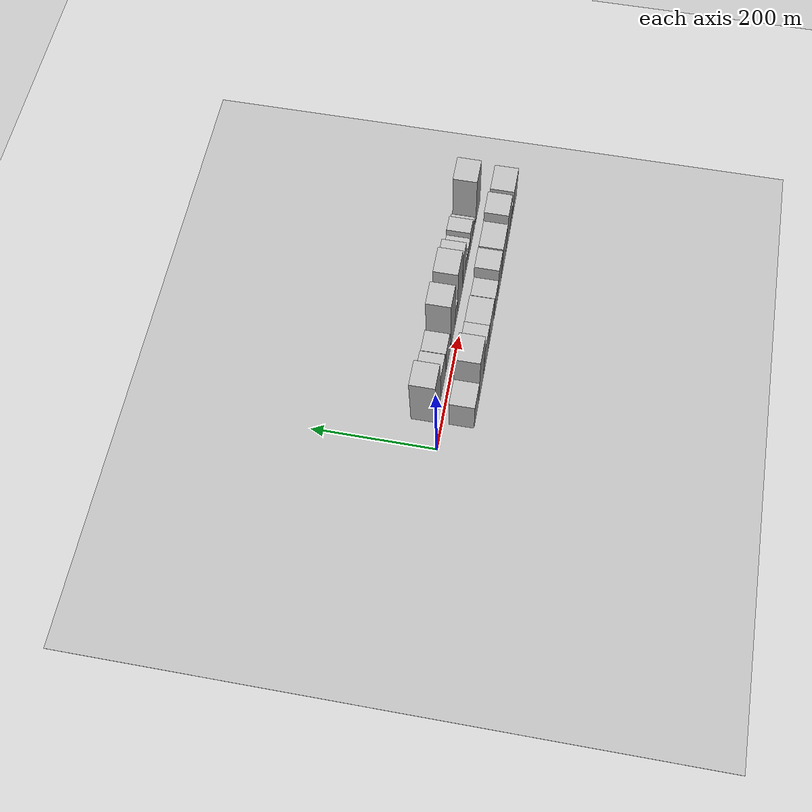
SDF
<?xml version="1.0" encoding="utf-8"?>

<sdf version="1.6">

   <world name="default">

      <gui fullscreen="0">

         <camera name="user_camera">

            <pose>-15 0 4.57585 0 0 0</pose>

            <view_controller>orbit</view_controller>

         </camera>

      </gui>

      <scene>

         <sky>

           <clouds>

             <speed>12</speed>

           </clouds>

         </sky>

         <ambient>0.4 0.4 0.4 1</ambient>

         <background>0.7 0.7 0.7 1</background>

         <shadows>1</shadows>

      </scene>

      <gravity>0 0 -9.8066</gravity>

      <magnetic_field>6e-06 2.3e-05 -4.2e-05</magnetic_field>

      <physics default="0" name="default_physics" type="ode">

         <ode>

            <solver>

               <type>quick</type>

               <iters>10</iters>

               <sor>1.0</sor>

               <use_dynamic_moi_rescaling>0</use_dynamic_moi_rescaling>

            </solver>

            <constraints>

               <cfm>0</cfm>

               <erp>0.2</erp>

               <contact_max_correcting_vel>100</contact_max_correcting_vel>

               <contact_surface_layer>0.001</contact_surface_layer>

            </constraints>

         </ode>

         <max_step_size>0.004</max_step_size>

         <real_time_factor>1</real_time_factor>

         <real_time_update_rate>250</real_time_update_rate>

      </physics>

      <light name="sun" type="directional">

         <cast_shadows>1</cast_shadows>

         <pose>0 0 10 0 0 0</pose>

         <diffuse>0.8 0.8 0.8 1</diffuse>

         <specular>0.2 0.2 0.2 1</specular>

         <attenuation>

            <range>1000</range>

            <constant>0.9</constant>

            <linear>0.01</linear>

            <quadratic>0.001</quadratic>

         </attenuation>

         <direction>-0.5 0.1 -0.9</direction>

      </light>

      <include>

         <name>ground_plane_1</name>

         <uri>model://HANNAS_ground_plane</uri>

         <pose>0 0 0  0 0 0</pose>

      </include>

      <include>

         <name>ground_plane_2</name>

         <uri>model://HANNAS_ground_plane</uri>

         <pose>100 0 0  0 0 0</pose>

      </include>

      <model name="building_1">

         <static>1</static>

         <pose frame="">64.8131 30.0000 0 0.000000 0.000000 1.570796</pose>

         <link name="link">

            <pose frame="">0 0 61.50 0 0 0</pose>

            <collision name="collision">

               <geometry>

                  <box>

                     <size>40.0000 41.6261 123.0000</size>

                  </box>

               </geometry>

               <max_contacts>10</max_contacts>

               <surface>

                  <contact>

                     <ode/>

                  </contact>

                  <bounce/>

                  <friction>

                     <torsional>

                        <ode/>

                     </torsional>

                     <ode/>

                  </friction>

               </surface>

            </collision>

            <visual name="visual">

               <cast_shadows>0</cast_shadows>

               <geometry>

                  <box>

                     <size>40.0000 41.6261 123.0000</size>

                  </box>

               </geometry>

               <material>

                  <script>

                     <uri>model://HANNAS_wall/materials/scripts</uri>

                     <uri>model://HANNAS_wall/materials/textures</uri>

                     <name>vrc/HANNAS_wall</name>

                  </script>

               </material>

            </visual>

            <self_collide>0</self_collide>

            <enable_wind>0</enable_wind>

            <kinematic>0</kinematic>

         </link>

      </model>

      <model name="building_2">

         <static>1</static>

         <pose frame="">106.8738 30.0000 0 0.000000 0.000000 1.570796</pose>

         <link name="link">

            <pose frame="">0 0 36.00 0 0 0</pose>

            <collision name="collision">

               <geometry>

                  <box>

                     <size>40.0000 42.4953 72.0000</size>

                  </box>

               </geometry>

               <max_contacts>10</max_contacts>

               <surface>

                  <contact>

                     <ode/>

                  </contact>

                  <bounce/>

                  <friction>

                     <torsional>

                        <ode/>

                     </torsional>

                     <ode/>

                  </friction>

               </surface>

            </collision>

            <visual name="visual">

               <cast_shadows>0</cast_shadows>

               <geometry>

                  <box>

                     <size>40.0000 42.4953 72.0000</size>

                  </box>

               </geometry>

               <material>

                  <script>

                     <uri>model://HANNAS_wall/materials/scripts</uri>

                     <uri>model://HANNAS_wall/materials/textures</uri>

                     <name>vrc/HANNAS_wall</name>

                  </script>

               </material>

            </visual>

            <self_collide>0</self_collide>

            <enable_wind>0</enable_wind>

            <kinematic>0</kinematic>

         </link>

      </model>

      <model name="building_3">

         <static>1</static>

         <pose frame="">151.3565 30.0000 0 0.000000 0.000000 1.570796</pose>

         <link name="link">

            <pose frame="">0 0 31.50 0 0 0</pose>

            <collision name="collision">

               <geometry>

                  <box>

                     <size>40.0000 36.4702 63.0000</size>

                  </box>

               </geometry>

               <max_contacts>10</max_contacts>

               <surface>

                  <contact>

                     <ode/>

                  </contact>

                  <bounce/>

                  <friction>

                     <torsional>

                        <ode/>

                     </torsional>

                     <ode/>

                  </friction>

               </surface>

            </collision>

            <visual name="visual">

               <cast_shadows>0</cast_shadows>

               <geometry>

                  <box>

                     <size>40.0000 36.4702 63.0000</size>

                  </box>

               </geometry>

               <material>

                  <script>

                     <uri>model://HANNAS_wall/materials/scripts</uri>

                     <uri>model://HANNAS_wall/materials/textures</uri>

                     <name>vrc/HANNAS_wall</name>

                  </script>

               </material>

            </visual>

            <self_collide>0</self_collide>

            <enable_wind>0</enable_wind>

            <kinematic>0</kinematic>

         </link>

      </model>

      <model name="building_4">

         <static>1</static>

         <pose frame="">174.4170 30.0000 0 0.000000 0.000000 1.570796</pose>

         <link name="link">

            <pose frame="">0 0 12.00 0 0 0</pose>

            <collision name="collision">

               <geometry>

                  <box>

                     <size>40.0000 9.6508 24.0000</size>

                  </box>

               </geometry>

               <max_contacts>10</max_contacts>

               <surface>

                  <contact>

                     <ode/>

                  </contact>

                  <bounce/>

                  <friction>

                     <torsional>

                        <ode/>

                     </torsional>

                     <ode/>

                  </friction>

               </surface>

            </collision>

            <visual name="visual">

               <cast_shadows>0</cast_shadows>

               <geometry>

                  <box>

                     <size>40.0000 9.6508 24.0000</size>

                  </box>

               </geometry>

               <material>

                  <script>

                     <uri>model://HANNAS_wall/materials/scripts</uri>

                     <uri>model://HANNAS_wall/materials/textures</uri>

                     <name>vrc/HANNAS_wall</name>

                  </script>

               </material>

            </visual>

            <self_collide>0</self_collide>

            <enable_wind>0</enable_wind>

            <kinematic>0</kinematic>

         </link>

      </model>

      <model name="building_5">

         <static>1</static>

         <pose frame="">199.0616 30.0000 0 0.000000 0.000000 1.570796</pose>

         <link name="link">

            <pose frame="">0 0 64.50 0 0 0</pose>

            <collision name="collision">

               <geometry>

                  <box>

                     <size>40.0000 39.6384 129.0000</size>

                  </box>

               </geometry>

               <max_contacts>10</max_contacts>

               <surface>

                  <contact>

                     <ode/>

                  </contact>

                  <bounce/>

                  <friction>

                     <torsional>

                        <ode/>

                     </torsional>

                     <ode/>

                  </friction>

               </surface>

            </collision>

            <visual name="visual">

               <cast_shadows>0</cast_shadows>

               <geometry>

                  <box>

                     <size>40.0000 39.6384 129.0000</size>

                  </box>

               </geometry>

               <material>

                  <script>

                     <uri>model://HANNAS_wall/materials/scripts</uri>

                     <uri>model://HANNAS_wall/materials/textures</uri>

                     <name>vrc/HANNAS_wall</name>

                  </script>

               </material>

            </visual>

            <self_collide>0</self_collide>

            <enable_wind>0</enable_wind>

            <kinematic>0</kinematic>

         </link>

      </model>

      <model name="building_6">

         <static>1</static>

         <pose frame="">230.5316 30.0000 0 0.000000 0.000000 1.570796</pose>

         <link name="link">

            <pose frame="">0 0 22.50 0 0 0</pose>

            <collision name="collision">

               <geometry>

                  <box>

                     <size>40.0000 23.3015 45.0000</size>

                  </box>

               </geometry>

               <max_contacts>10</max_contacts>

               <surface>

                  <contact>

                     <ode/>

                  </contact>

                  <bounce/>

                  <friction>

                     <torsional>

                        <ode/>

                     </torsional>

                     <ode/>

                  </friction>

               </surface>

            </collision>

            <visual name="visual">

               <cast_shadows>0</cast_shadows>

               <geometry>

                  <box>

                     <size>40.0000 23.3015 45.0000</size>

                  </box>

               </geometry>

               <material>

                  <script>

                     <uri>model://HANNAS_wall/materials/scripts</uri>

                     <uri>model://HANNAS_wall/materials/textures</uri>

                     <name>vrc/HANNAS_wall</name>

                  </script>

               </material>

            </visual>

            <self_collide>0</self_collide>

            <enable_wind>0</enable_wind>

            <kinematic>0</kinematic>

         </link>

      </model>

      <model name="building_7">

         <static>1</static>

         <pose frame="">264.7214 30.0000 0 0.000000 0.000000 1.570796</pose>

         <link name="link">

            <pose frame="">0 0 60.00 0 0 0</pose>

            <collision name="collision">

               <geometry>

                  <box>

                     <size>40.0000 45.0781 120.0000</size>

                  </box>

               </geometry>

               <max_contacts>10</max_contacts>

               <surface>

                  <contact>

                     <ode/>

                  </contact>

                  <bounce/>

                  <friction>

                     <torsional>

                        <ode/>

                     </torsional>

                     <ode/>

                  </friction>

               </surface>

            </collision>

            <visual name="visual">

               <cast_shadows>0</cast_shadows>

               <geometry>

                  <box>

                     <size>40.0000 45.0781 120.0000</size>

                  </box>

               </geometry>

               <material>

                  <script>

                     <uri>model://HANNAS_wall/materials/scripts</uri>

                     <uri>model://HANNAS_wall/materials/textures</uri>

                     <name>vrc/HANNAS_wall</name>

                  </script>

               </material>

            </visual>

            <self_collide>0</self_collide>

            <enable_wind>0</enable_wind>

            <kinematic>0</kinematic>

         </link>

      </model>

      <model name="building_8">

         <static>1</static>

         <pose frame="">305.6282 30.0000 0 0.000000 0.000000 1.570796</pose>

         <link name="link">

            <pose frame="">0 0 46.50 0 0 0</pose>

            <collision name="collision">

               <geometry>

                  <box>

                     <size>40.0000 28.7355 93.0000</size>

                  </box>

               </geometry>

               <max_contacts>10</max_contacts>

               <surface>

                  <contact>

                     <ode/>

                  </contact>

                  <bounce/>

                  <friction>

                     <torsional>

                        <ode/>

                     </torsional>

                     <ode/>

                  </friction>

               </surface>

            </collision>

            <visual name="visual">

               <cast_shadows>0</cast_shadows>

               <geometry>

                  <box>

                     <size>40.0000 28.7355 93.0000</size>

                  </box>

               </geometry>

               <material>

                  <script>

                     <uri>model://HANNAS_wall/materials/scripts</uri>

                     <uri>model://HANNAS_wall/materials/textures</uri>

                     <name>vrc/HANNAS_wall</name>

                  </script>

               </material>

            </visual>

            <self_collide>0</self_collide>

            <enable_wind>0</enable_wind>

            <kinematic>0</kinematic>

         </link>

      </model>

      <model name="building_9">

         <static>1</static>

         <pose frame="">329.7105 30.0000 0 0.000000 0.000000 1.570796</pose>

         <link name="link">

            <pose frame="">0 0 18.00 0 0 0</pose>

            <collision name="collision">

               <geometry>

                  <box>

                     <size>40.0000 19.4291 36.0000</size>

                  </box>

               </geometry>

               <max_contacts>10</max_contacts>

               <surface>

                  <contact>

                     <ode/>

                  </contact>

                  <bounce/>

                  <friction>

                     <torsional>

                        <ode/>

                     </torsional>

                     <ode/>

                  </friction>

               </surface>

            </collision>

            <visual name="visual">

               <cast_shadows>0</cast_shadows>

               <geometry>

                  <box>

                     <size>40.0000 19.4291 36.0000</size>

                  </box>

               </geometry>

               <material>

                  <script>

                     <uri>model://HANNAS_wall/materials/scripts</uri>

                     <uri>model://HANNAS_wall/materials/textures</uri>

                     <name>vrc/HANNAS_wall</name>

                  </script>

               </material>

            </visual>

            <self_collide>0</self_collide>

            <enable_wind>0</enable_wind>

            <kinematic>0</kinematic>

         </link>

      </model>

      <model name="building_10">

         <static>1</static>

         <pose frame="">352.7230 30.0000 0 0.000000 0.000000 1.570796</pose>

         <link name="link">

            <pose frame="">0 0 19.50 0 0 0</pose>

            <collision name="collision">

               <geometry>

                  <box>

                     <size>40.0000 20.5959 39.0000</size>

                  </box>

               </geometry>

               <max_contacts>10</max_contacts>

               <surface>

                  <contact>

                     <ode/>

                  </contact>

                  <bounce/>

                  <friction>

                     <torsional>

                        <ode/>

                     </torsional>

                     <ode/>

                  </friction>

               </surface>

            </collision>

            <visual name="visual">

               <cast_shadows>0</cast_shadows>

               <geometry>

                  <box>

                     <size>40.0000 20.5959 39.0000</size>

                  </box>

               </geometry>

               <material>

                  <script>

                     <uri>model://HANNAS_wall/materials/scripts</uri>

                     <uri>model://HANNAS_wall/materials/textures</uri>

                     <name>vrc/HANNAS_wall</name>

                  </script>

               </material>

            </visual>

            <self_collide>0</self_collide>

            <enable_wind>0</enable_wind>

            <kinematic>0</kinematic>

         </link>

      </model>

      <model name="building_11">

         <static>1</static>

         <pose frame="">376.6512 30.0000 0 0.000000 0.000000 1.570796</pose>

         <link name="link">

            <pose frame="">0 0 27.00 0 0 0</pose>

            <collision name="collision">

               <geometry>

                  <box>

                     <size>40.0000 27.2604 54.0000</size>

                  </box>

               </geometry>

               <max_contacts>10</max_contacts>

               <surface>

                  <contact>

                     <ode/>

                  </contact>

                  <bounce/>

                  <friction>

                     <torsional>

                        <ode/>

                     </torsional>

                     <ode/>

                  </friction>

               </surface>

            </collision>

            <visual name="visual">

               <cast_shadows>0</cast_shadows>

               <geometry>

                  <box>

                     <size>40.0000 27.2604 54.0000</size>

                  </box>

               </geometry>

               <material>

                  <script>

                     <uri>model://HANNAS_wall/materials/scripts</uri>

                     <uri>model://HANNAS_wall/materials/textures</uri>

                     <name>vrc/HANNAS_wall</name>

                  </script>

               </material>

            </visual>

            <self_collide>0</self_collide>

            <enable_wind>0</enable_wind>

            <kinematic>0</kinematic>

         </link>

      </model>

      <model name="building_12">

         <static>1</static>

         <pose frame="">399.7596 30.0000 0 0.000000 0.000000 1.570796</pose>

         <link name="link">

            <pose frame="">0 0 16.50 0 0 0</pose>

            <collision name="collision">

               <geometry>

                  <box>

                     <size>40.0000 18.9564 33.0000</size>

                  </box>

               </geometry>

               <max_contacts>10</max_contacts>

               <surface>

                  <contact>

                     <ode/>

                  </contact>

                  <bounce/>

                  <friction>

                     <torsional>

                        <ode/>

                     </torsional>

                     <ode/>

                  </friction>

               </surface>

            </collision>

            <visual name="visual">

               <cast_shadows>0</cast_shadows>

               <geometry>

                  <box>

                     <size>40.0000 18.9564 33.0000</size>

                  </box>

               </geometry>

               <material>

                  <script>

                     <uri>model://HANNAS_wall/materials/scripts</uri>

                     <uri>model://HANNAS_wall/materials/textures</uri>

                     <name>vrc/HANNAS_wall</name>

                  </script>

               </material>

            </visual>

            <self_collide>0</self_collide>

            <enable_wind>0</enable_wind>

            <kinematic>0</kinematic>

         </link>

      </model>

      <model name="building_13">

         <static>1</static>

         <pose frame="">418.4947 30.0000 0 0.000000 0.000000 1.570796</pose>

         <link name="link">

            <pose frame="">0 0 7.50 0 0 0</pose>

            <collision name="collision">

               <geometry>

                  <box>

                     <size>40.0000 6.5139 15.0000</size>

                  </box>

               </geometry>

               <max_contacts>10</max_contacts>

               <surface>

                  <contact>

                     <ode/>

                  </contact>

                  <bounce/>

                  <friction>

                     <torsional>

                        <ode/>

                     </torsional>

                     <ode/>

                  </friction>

               </surface>

            </collision>

            <visual name="visual">

               <cast_shadows>0</cast_shadows>

               <geometry>

                  <box>

                     <size>40.0000 6.5139 15.0000</size>

                  </box>

               </geometry>

               <material>

                  <script>

                     <uri>model://HANNAS_wall/materials/scripts</uri>

                     <uri>model://HANNAS_wall/materials/textures</uri>

                     <name>vrc/HANNAS_wall</name>

                  </script>

               </material>

            </visual>

            <self_collide>0</self_collide>

            <enable_wind>0</enable_wind>

            <kinematic>0</kinematic>

         </link>

      </model>

      <model name="building_14">

         <static>1</static>

         <pose frame="">443.7280 30.0000 0 0.000000 0.000000 1.570796</pose>

         <link name="link">

            <pose frame="">0 0 57.00 0 0 0</pose>

            <collision name="collision">

               <geometry>

                  <box>

                     <size>40.0000 43.9526 114.0000</size>

                  </box>

               </geometry>

               <max_contacts>10</max_contacts>

               <surface>

                  <contact>

                     <ode/>

                  </contact>

                  <bounce/>

                  <friction>

                     <torsional>

                        <ode/>

                     </torsional>

                     <ode/>

                  </friction>

               </surface>

            </collision>

            <visual name="visual">

               <cast_shadows>0</cast_shadows>

               <geometry>

                  <box>

                     <size>40.0000 43.9526 114.0000</size>

                  </box>

               </geometry>

               <material>

                  <script>

                     <uri>model://HANNAS_wall/materials/scripts</uri>

                     <uri>model://HANNAS_wall/materials/textures</uri>

                     <name>vrc/HANNAS_wall</name>

                  </script>

               </material>

            </visual>

            <self_collide>0</self_collide>

            <enable_wind>0</enable_wind>

            <kinematic>0</kinematic>

         </link>

      </model>

      <model name="building_15">

         <static>1</static>

         <pose frame="">66.2486 -30.0000 0 0.000000 0.000000 1.570796</pose>

         <link name="link">

            <pose frame="">0 0 37.50 0 0 0</pose>

            <collision name="collision">

               <geometry>

                  <box>

                     <size>40.0000 42.4973 75.0000</size>

                  </box>

               </geometry>

               <max_contacts>10</max_contacts>

               <surface>

                  <contact>

                     <ode/>

                  </contact>

                  <bounce/>

                  <friction>

                     <torsional>

                        <ode/>

                     </torsional>

                     <ode/>

                  </friction>

               </surface>

            </collision>

            <visual name="visual">

               <cast_shadows>0</cast_shadows>

               <geometry>

                  <box>

                     <size>40.0000 42.4973 75.0000</size>

                  </box>

               </geometry>

               <material>

                  <script>

                     <uri>model://HANNAS_wall/materials/scripts</uri>

                     <uri>model://HANNAS_wall/materials/textures</uri>

                     <name>vrc/HANNAS_wall</name>

                  </script>

               </material>

            </visual>

            <self_collide>0</self_collide>

            <enable_wind>0</enable_wind>

            <kinematic>0</kinematic>

         </link>

      </model>

      <model name="building_16">

         <static>1</static>

         <pose frame="">110.5010 -30.0000 0 0.000000 0.000000 1.570796</pose>

         <link name="link">

            <pose frame="">0 0 70.50 0 0 0</pose>

            <collision name="collision">

               <geometry>

                  <box>

                     <size>40.0000 46.0074 141.0000</size>

                  </box>

               </geometry>

               <max_contacts>10</max_contacts>

               <surface>

                  <contact>

                     <ode/>

                  </contact>

                  <bounce/>

                  <friction>

                     <torsional>

                        <ode/>

                     </torsional>

                     <ode/>

                  </friction>

               </surface>

            </collision>

            <visual name="visual">

               <cast_shadows>0</cast_shadows>

               <geometry>

                  <box>

                     <size>40.0000 46.0074 141.0000</size>

                  </box>

               </geometry>

               <material>

                  <script>

                     <uri>model://HANNAS_wall/materials/scripts</uri>

                     <uri>model://HANNAS_wall/materials/textures</uri>

                     <name>vrc/HANNAS_wall</name>

                  </script>

               </material>

            </visual>

            <self_collide>0</self_collide>

            <enable_wind>0</enable_wind>

            <kinematic>0</kinematic>

         </link>

      </model>

      <model name="building_17">

         <static>1</static>

         <pose frame="">159.8700 -30.0000 0 0.000000 0.000000 1.570796</pose>

         <link name="link">

            <pose frame="">0 0 43.50 0 0 0</pose>

            <collision name="collision">

               <geometry>

                  <box>

                     <size>40.0000 44.7305 87.0000</size>

                  </box>

               </geometry>

               <max_contacts>10</max_contacts>

               <surface>

                  <contact>

                     <ode/>

                  </contact>

                  <bounce/>

                  <friction>

                     <torsional>

                        <ode/>

                     </torsional>

                     <ode/>

                  </friction>

               </surface>

            </collision>

            <visual name="visual">

               <cast_shadows>0</cast_shadows>

               <geometry>

                  <box>

                     <size>40.0000 44.7305 87.0000</size>

                  </box>

               </geometry>

               <material>

                  <script>

                     <uri>model://HANNAS_wall/materials/scripts</uri>

                     <uri>model://HANNAS_wall/materials/textures</uri>

                     <name>vrc/HANNAS_wall</name>

                  </script>

               </material>

            </visual>

            <self_collide>0</self_collide>

            <enable_wind>0</enable_wind>

            <kinematic>0</kinematic>

         </link>

      </model>

      <model name="building_18">

         <static>1</static>

         <pose frame="">209.0879 -30.0000 0 0.000000 0.000000 1.570796</pose>

         <link name="link">

            <pose frame="">0 0 40.50 0 0 0</pose>

            <collision name="collision">

               <geometry>

                  <box>

                     <size>40.0000 47.7055 81.0000</size>

                  </box>

               </geometry>

               <max_contacts>10</max_contacts>

               <surface>

                  <contact>

                     <ode/>

                  </contact>

                  <bounce/>

                  <friction>

                     <torsional>

                        <ode/>

                     </torsional>

                     <ode/>

                  </friction>

               </surface>

            </collision>

            <visual name="visual">

               <cast_shadows>0</cast_shadows>

               <geometry>

                  <box>

                     <size>40.0000 47.7055 81.0000</size>

                  </box>

               </geometry>

               <material>

                  <script>

                     <uri>model://HANNAS_wall/materials/scripts</uri>

                     <uri>model://HANNAS_wall/materials/textures</uri>

                     <name>vrc/HANNAS_wall</name>

                  </script>

               </material>

            </visual>

            <self_collide>0</self_collide>

            <enable_wind>0</enable_wind>

            <kinematic>0</kinematic>

         </link>

      </model>

      <model name="building_19">

         <static>1</static>

         <pose frame="">258.7349 -30.0000 0 0.000000 0.000000 1.570796</pose>

         <link name="link">

            <pose frame="">0 0 33.00 0 0 0</pose>

            <collision name="collision">

               <geometry>

                  <box>

                     <size>40.0000 33.5884 66.0000</size>

                  </box>

               </geometry>

               <max_contacts>10</max_contacts>

               <surface>

                  <contact>

                     <ode/>

                  </contact>

                  <bounce/>

                  <friction>

                     <torsional>

                        <ode/>

                     </torsional>

                     <ode/>

                  </friction>

               </surface>

            </collision>

            <visual name="visual">

               <cast_shadows>0</cast_shadows>

               <geometry>

                  <box>

                     <size>40.0000 33.5884 66.0000</size>

                  </box>

               </geometry>

               <material>

                  <script>

                     <uri>model://HANNAS_wall/materials/scripts</uri>

                     <uri>model://HANNAS_wall/materials/textures</uri>

                     <name>vrc/HANNAS_wall</name>

                  </script>

               </material>

            </visual>

            <self_collide>0</self_collide>

            <enable_wind>0</enable_wind>

            <kinematic>0</kinematic>

         </link>

      </model>

      <model name="building_20">

         <static>1</static>

         <pose frame="">294.1428 -30.0000 0 0.000000 0.000000 1.570796</pose>

         <link name="link">

            <pose frame="">0 0 48.00 0 0 0</pose>

            <collision name="collision">

               <geometry>

                  <box>

                     <size>40.0000 37.2274 96.0000</size>

                  </box>

               </geometry>

               <max_contacts>10</max_contacts>

               <surface>

                  <contact>

                     <ode/>

                  </contact>

                  <bounce/>

                  <friction>

                     <torsional>

                        <ode/>

                     </torsional>

                     <ode/>

                  </friction>

               </surface>

            </collision>

            <visual name="visual">

               <cast_shadows>0</cast_shadows>

               <geometry>

                  <box>

                     <size>40.0000 37.2274 96.0000</size>

                  </box>

               </geometry>

               <material>

                  <script>

                     <uri>model://HANNAS_wall/materials/scripts</uri>

                     <uri>model://HANNAS_wall/materials/textures</uri>

                     <name>vrc/HANNAS_wall</name>

                  </script>

               </material>

            </visual>

            <self_collide>0</self_collide>

            <enable_wind>0</enable_wind>

            <kinematic>0</kinematic>

         </link>

      </model>

      <model name="building_21">

         <static>1</static>

         <pose frame="">342.9894 -30.0000 0 0.000000 0.000000 1.570796</pose>

         <link name="link">

            <pose frame="">0 0 45.00 0 0 0</pose>

            <collision name="collision">

               <geometry>

                  <box>

                     <size>40.0000 48.4659 90.0000</size>

                  </box>

               </geometry>

               <max_contacts>10</max_contacts>

               <surface>

                  <contact>

                     <ode/>

                  </contact>

                  <bounce/>

                  <friction>

                     <torsional>

                        <ode/>

                     </torsional>

                     <ode/>

                  </friction>

               </surface>

            </collision>

            <visual name="visual">

               <cast_shadows>0</cast_shadows>

               <geometry>

                  <box>

                     <size>40.0000 48.4659 90.0000</size>

                  </box>

               </geometry>

               <material>

                  <script>

                     <uri>model://HANNAS_wall/materials/scripts</uri>

                     <uri>model://HANNAS_wall/materials/textures</uri>

                     <name>vrc/HANNAS_wall</name>

                  </script>

               </material>

            </visual>

            <self_collide>0</self_collide>

            <enable_wind>0</enable_wind>

            <kinematic>0</kinematic>

         </link>

      </model>

      <model name="building_22">

         <static>1</static>

         <pose frame="">387.5618 -30.0000 0 0.000000 0.000000 1.570796</pose>

         <link name="link">

            <pose frame="">0 0 57.00 0 0 0</pose>

            <collision name="collision">

               <geometry>

                  <box>

                     <size>40.0000 40.6789 114.0000</size>

                  </box>

               </geometry>

               <max_contacts>10</max_contacts>

               <surface>

                  <contact>

                     <ode/>

                  </contact>

                  <bounce/>

                  <friction>

                     <torsional>

                        <ode/>

                     </torsional>

                     <ode/>

                  </friction>

               </surface>

            </collision>

            <visual name="visual">

               <cast_shadows>0</cast_shadows>

               <geometry>

                  <box>

                     <size>40.0000 40.6789 114.0000</size>

                  </box>

               </geometry>

               <material>

                  <script>

                     <uri>model://HANNAS_wall/materials/scripts</uri>

                     <uri>model://HANNAS_wall/materials/textures</uri>

                     <name>vrc/HANNAS_wall</name>

                  </script>

               </material>

            </visual>

            <self_collide>0</self_collide>

            <enable_wind>0</enable_wind>

            <kinematic>0</kinematic>

         </link>

      </model>

      <model name="building_23">

         <static>1</static>

         <pose frame="">422.3232 -30.0000 0 0.000000 0.000000 1.570796</pose>

         <link name="link">

            <pose frame="">0 0 27.00 0 0 0</pose>

            <collision name="collision">

               <geometry>

                  <box>

                     <size>40.0000 28.8439 54.0000</size>

                  </box>

               </geometry>

               <max_contacts>10</max_contacts>

               <surface>

                  <contact>

                     <ode/>

                  </contact>

                  <bounce/>

                  <friction>

                     <torsional>

                        <ode/>

                     </torsional>

                     <ode/>

                  </friction>

               </surface>

            </collision>

            <visual name="visual">

               <cast_shadows>0</cast_shadows>

               <geometry>

                  <box>

                     <size>40.0000 28.8439 54.0000</size>

                  </box>

               </geometry>

               <material>

                  <script>

                     <uri>model://HANNAS_wall/materials/scripts</uri>

                     <uri>model://HANNAS_wall/materials/textures</uri>

                     <name>vrc/HANNAS_wall</name>

                  </script>

               </material>

            </visual>

            <self_collide>0</self_collide>

            <enable_wind>0</enable_wind>

            <kinematic>0</kinematic>

         </link>

      </model>

      <model name="building_24">

         <static>1</static>

         <pose frame="">460.8884 -30.0000 0 0.000000 0.000000 1.570796</pose>

         <link name="link">

            <pose frame="">0 0 40.50 0 0 0</pose>

            <collision name="collision">

               <geometry>

                  <box>

                     <size>40.0000 48.2864 81.0000</size>

                  </box>

               </geometry>

               <max_contacts>10</max_contacts>

               <surface>

                  <contact>

                     <ode/>

                  </contact>

                  <bounce/>

                  <friction>

                     <torsional>

                        <ode/>

                     </torsional>

                     <ode/>

                  </friction>

               </surface>

            </collision>

            <visual name="visual">

               <cast_shadows>0</cast_shadows>

               <geometry>

                  <box>

                     <size>40.0000 48.2864 81.0000</size>

                  </box>

               </geometry>

               <material>

                  <script>

                     <uri>model://HANNAS_wall/materials/scripts</uri>

                     <uri>model://HANNAS_wall/materials/textures</uri>

                     <name>vrc/HANNAS_wall</name>

                  </script>

               </material>

            </visual>

            <self_collide>0</self_collide>

            <enable_wind>0</enable_wind>

            <kinematic>0</kinematic>

         </link>

      </model>

   </world>

</sdf>

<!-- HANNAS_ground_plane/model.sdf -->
<sdf version="1.4">
<model name="HANNAS_ground_plane">
  <static>true</static>
    <link name="link">
      <collision name="collision">
        <geometry>
          <plane>
            <normal>0 0 1</normal>
            <size>1000 1000</size>
          </plane>
        </geometry>
        <surface>
          <friction>
            <ode>
              <mu>100</mu>
              <mu2>50</mu2>
            </ode>
          </friction>
        </surface>
      </collision>
      <visual name="visual">
        <cast_shadows>false</cast_shadows>
        <geometry>
          <plane>
            <normal>0 0 1</normal>
            <size>1000 1000</size>
          </plane>
        </geometry>
        <material>
          <script>
            <uri>model://HANNAS_ground_plane/materials/scripts/HANNAS_ground_plane.material</uri>
	    <uri>model://HANNAS_ground_plane/materials/textures</uri>
            <name>HANNASGroundPlane/Image</name>
          </script>
        </material>
      </visual>
    </link>
  </model>
</sdf>
